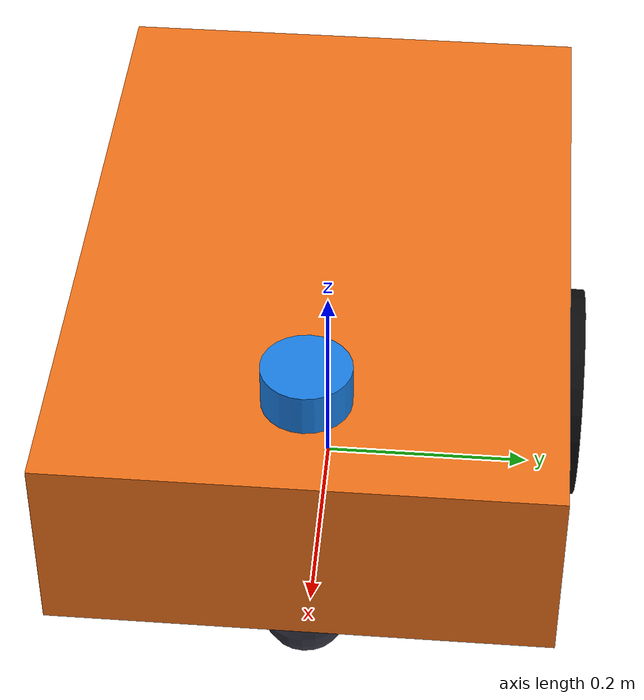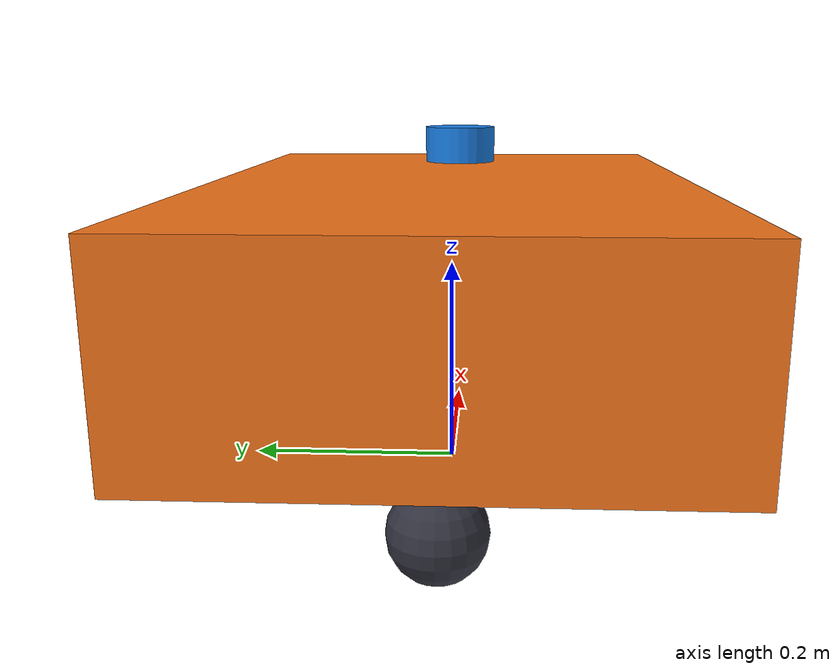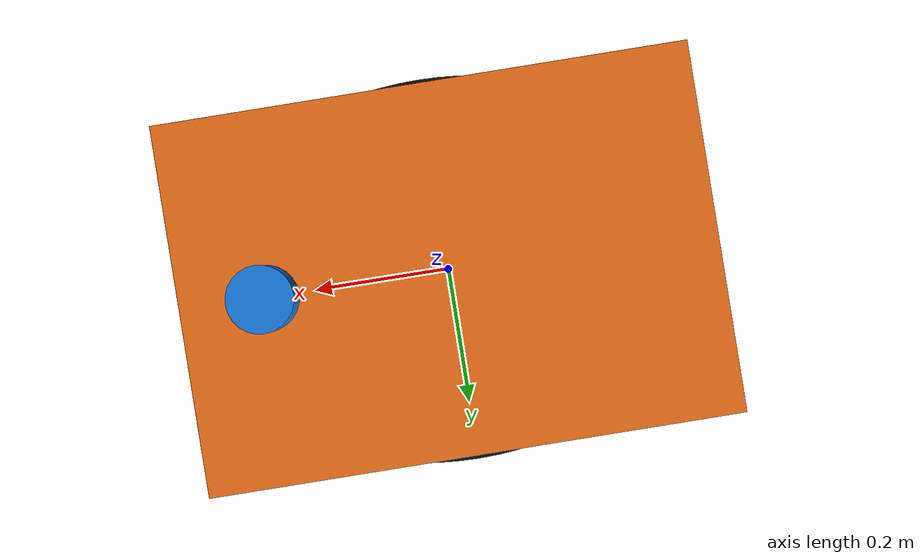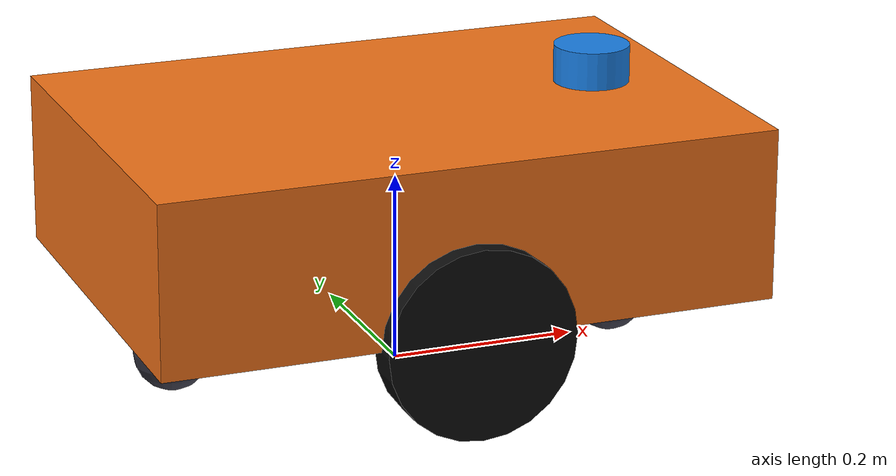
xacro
<?xml version="1.0"?>
<robot name="amr" xmlns:xacro="http://www.ros.org/wiki/xacro">

  <!-- Arguments -->
  <xacro:arg name="robot_name" default="amr_0"/>
  <xacro:arg name="prefix" default="amr_0/"/>
  <xacro:arg name="wheel_separation" default="0.45"/>
  <xacro:arg name="wheel_radius" default="0.10"/>
  <xacro:arg name="chassis_length" default="0.65"/>
  <xacro:arg name="chassis_width" default="0.45"/>
  <xacro:arg name="chassis_height" default="0.18"/>
  <xacro:arg name="chassis_mass" default="15.0"/>

  <!-- Include sub-components -->
  <xacro:include filename="amr_materials.xacro"/>
  <xacro:include filename="amr_core.xacro"/>
  <xacro:include filename="amr_lidar.xacro"/>
  <xacro:include filename="amr_gazebo.xacro"/>

  <!-- Instantiate components -->
  <xacro:amr_core
    prefix="$(arg prefix)"
    chassis_length="$(arg chassis_length)"
    chassis_width="$(arg chassis_width)"
    chassis_height="$(arg chassis_height)"
    chassis_mass="$(arg chassis_mass)"
    wheel_separation="$(arg wheel_separation)"
    wheel_radius="$(arg wheel_radius)"/>

  <xacro:amr_lidar
    prefix="$(arg prefix)"/>

  <xacro:amr_gazebo
    robot_name="$(arg robot_name)"
    prefix="$(arg prefix)"
    wheel_separation="$(arg wheel_separation)"
    wheel_radius="$(arg wheel_radius)"/>

</robot>

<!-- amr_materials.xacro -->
<robot xmlns:xacro="http://www.ros.org/wiki/xacro">

  <material name="amr_orange">
    <color rgba="0.95 0.45 0.1 1.0"/>
  </material>

  <material name="amr_dark_grey">
    <color rgba="0.2 0.2 0.25 1.0"/>
  </material>

  <material name="amr_light_grey">
    <color rgba="0.7 0.7 0.75 1.0"/>
  </material>

  <material name="amr_black">
    <color rgba="0.05 0.05 0.05 1.0"/>
  </material>

  <material name="amr_blue">
    <color rgba="0.1 0.5 0.9 1.0"/>
  </material>

</robot>

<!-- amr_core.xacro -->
<robot xmlns:xacro="http://www.ros.org/wiki/xacro">

  <xacro:macro name="amr_core" params="
    prefix
    chassis_length:=0.65
    chassis_width:=0.45
    chassis_height:=0.18
    chassis_mass:=15.0
    wheel_separation:=0.45
    wheel_radius:=0.10
    wheel_width:=0.04
    wheel_mass:=1.5
    caster_radius:=0.04
    caster_mass:=0.5
  ">

    <!-- Root ground projection frame -->
    <link name="${prefix}base_footprint"/>

    <!-- Base link (chassis body) -->
    <joint name="${prefix}base_footprint_joint" type="fixed">
      <parent link="${prefix}base_footprint"/>
      <child link="${prefix}base_link"/>
      <origin xyz="0 0 ${wheel_radius}" rpy="0 0 0"/>
    </joint>

    <link name="${prefix}base_link">
      <visual>
        <origin xyz="0 0 ${chassis_height / 2.0}" rpy="0 0 0"/>
        <geometry>
          <box size="${chassis_length} ${chassis_width} ${chassis_height}"/>
        </geometry>
        <material name="amr_orange"/>
      </visual>

      <collision>
        <origin xyz="0 0 ${chassis_height / 2.0}" rpy="0 0 0"/>
        <geometry>
          <box size="${chassis_length} ${chassis_width} ${chassis_height}"/>
        </geometry>
      </collision>

      <inertial>
        <origin xyz="0 0 ${chassis_height / 2.0}" rpy="0 0 0"/>
        <mass value="${chassis_mass}"/>
        <inertia
          ixx="${(1.0 / 12.0) * chassis_mass * (chassis_width * chassis_width + chassis_height * chassis_height)}"
          ixy="0.0" ixz="0.0"
          iyy="${(1.0 / 12.0) * chassis_mass * (chassis_length * chassis_length + chassis_height * chassis_height)}"
          iyz="0.0"
          izz="${(1.0 / 12.0) * chassis_mass * (chassis_length * chassis_length + chassis_width * chassis_width)}"/>
      </inertial>
    </link>

    <!-- Left Wheel -->
    <joint name="${prefix}left_wheel_joint" type="continuous">
      <parent link="${prefix}base_link"/>
      <child link="${prefix}left_wheel"/>
      <origin xyz="0.0 ${wheel_separation / 2.0} 0.0" rpy="0 0 0"/>
      <axis xyz="0 1 0"/>
      <dynamics damping="0.1" friction="0.1"/>
    </joint>

    <link name="${prefix}left_wheel">
      <visual>
        <origin xyz="0 0 0" rpy="1.57079632679 0 0"/>
        <geometry>
          <cylinder radius="${wheel_radius}" length="${wheel_width}"/>
        </geometry>
        <material name="amr_black"/>
      </visual>

      <collision>
        <origin xyz="0 0 0" rpy="1.57079632679 0 0"/>
        <geometry>
          <cylinder radius="${wheel_radius}" length="${wheel_width}"/>
        </geometry>
      </collision>

      <inertial>
        <mass value="${wheel_mass}"/>
        <inertia
          ixx="${(1.0 / 12.0) * wheel_mass * (3 * wheel_radius * wheel_radius + wheel_width * wheel_width)}"
          ixy="0.0" ixz="0.0"
          iyy="${0.5 * wheel_mass * wheel_radius * wheel_radius}"
          iyz="0.0"
          izz="${(1.0 / 12.0) * wheel_mass * (3 * wheel_radius * wheel_radius + wheel_width * wheel_width)}"/>
      </inertial>
    </link>

    <!-- Right Wheel -->
    <joint name="${prefix}right_wheel_joint" type="continuous">
      <parent link="${prefix}base_link"/>
      <child link="${prefix}right_wheel"/>
      <origin xyz="0.0 ${-wheel_separation / 2.0} 0.0" rpy="0 0 0"/>
      <axis xyz="0 1 0"/>
      <dynamics damping="0.1" friction="0.1"/>
    </joint>

    <link name="${prefix}right_wheel">
      <visual>
        <origin xyz="0 0 0" rpy="1.57079632679 0 0"/>
        <geometry>
          <cylinder radius="${wheel_radius}" length="${wheel_width}"/>
        </geometry>
        <material name="amr_black"/>
      </visual>

      <collision>
        <origin xyz="0 0 0" rpy="1.57079632679 0 0"/>
        <geometry>
          <cylinder radius="${wheel_radius}" length="${wheel_width}"/>
        </geometry>
      </collision>

      <inertial>
        <mass value="${wheel_mass}"/>
        <inertia
          ixx="${(1.0 / 12.0) * wheel_mass * (3 * wheel_radius * wheel_radius + wheel_width * wheel_width)}"
          ixy="0.0" ixz="0.0"
          iyy="${0.5 * wheel_mass * wheel_radius * wheel_radius}"
          iyz="0.0"
          izz="${(1.0 / 12.0) * wheel_mass * (3 * wheel_radius * wheel_radius + wheel_width * wheel_width)}"/>
      </inertial>
    </link>

    <!-- Front Caster -->
    <joint name="${prefix}front_caster_joint" type="fixed">
      <parent link="${prefix}base_link"/>
      <child link="${prefix}front_caster"/>
      <origin xyz="${chassis_length / 2.0 - 0.08} 0.0 ${-wheel_radius + caster_radius}" rpy="0 0 0"/>
    </joint>

    <link name="${prefix}front_caster">
      <visual>
        <geometry>
          <sphere radius="${caster_radius}"/>
        </geometry>
        <material name="amr_dark_grey"/>
      </visual>

      <collision>
        <geometry>
          <sphere radius="${caster_radius}"/>
        </geometry>
      </collision>

      <inertial>
        <mass value="${caster_mass}"/>
        <inertia
          ixx="${0.4 * caster_mass * caster_radius * caster_radius}"
          ixy="0.0" ixz="0.0"
          iyy="${0.4 * caster_mass * caster_radius * caster_radius}"
          iyz="0.0"
          izz="${0.4 * caster_mass * caster_radius * caster_radius}"/>
      </inertial>
    </link>

    <!-- Rear Caster -->
    <joint name="${prefix}rear_caster_joint" type="fixed">
      <parent link="${prefix}base_link"/>
      <child link="${prefix}rear_caster"/>
      <origin xyz="${-chassis_length / 2.0 + 0.08} 0.0 ${-wheel_radius + caster_radius}" rpy="0 0 0"/>
    </joint>

    <link name="${prefix}rear_caster">
      <visual>
        <geometry>
          <sphere radius="${caster_radius}"/>
        </geometry>
        <material name="amr_dark_grey"/>
      </visual>

      <collision>
        <geometry>
          <sphere radius="${caster_radius}"/>
        </geometry>
      </collision>

      <inertial>
        <mass value="${caster_mass}"/>
        <inertia
          ixx="${0.4 * caster_mass * caster_radius * caster_radius}"
          ixy="0.0" ixz="0.0"
          iyy="${0.4 * caster_mass * caster_radius * caster_radius}"
          iyz="0.0"
          izz="${0.4 * caster_mass * caster_radius * caster_radius}"/>
      </inertial>
    </link>

  </xacro:macro>

</robot>

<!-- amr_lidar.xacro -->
<robot xmlns:xacro="http://www.ros.org/wiki/xacro">

  <xacro:macro name="amr_lidar" params="
    prefix
    laser_x:=0.22
    laser_y:=0.0
    laser_z:=0.18
  ">

    <joint name="${prefix}laser_joint" type="fixed">
      <parent link="${prefix}base_link"/>
      <child link="${prefix}laser_frame"/>
      <origin xyz="${laser_x} ${laser_y} ${laser_z}" rpy="0 0 0"/>
    </joint>

    <link name="${prefix}laser_frame">
      <visual>
        <origin xyz="0 0 0.02" rpy="0 0 0"/>
        <geometry>
          <cylinder radius="0.04" length="0.04"/>
        </geometry>
        <material name="amr_blue"/>
      </visual>

      <collision>
        <origin xyz="0 0 0.02" rpy="0 0 0"/>
        <geometry>
          <cylinder radius="0.04" length="0.04"/>
        </geometry>
      </collision>

      <inertial>
        <origin xyz="0 0 0.02" rpy="0 0 0"/>
        <mass value="0.2"/>
        <inertia
          ixx="0.0001" ixy="0.0" ixz="0.0"
          iyy="0.0001" iyz="0.0"
          izz="0.0001"/>
      </inertial>
    </link>

  </xacro:macro>

</robot>
